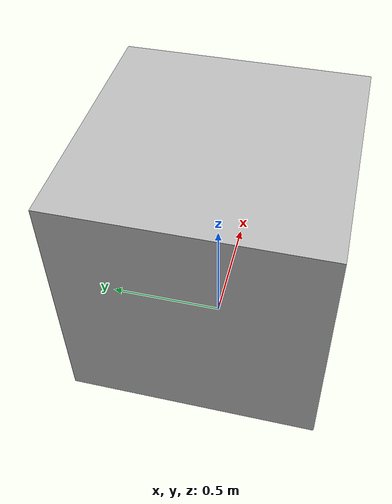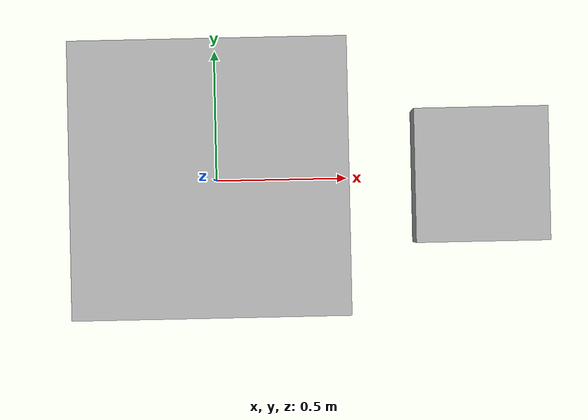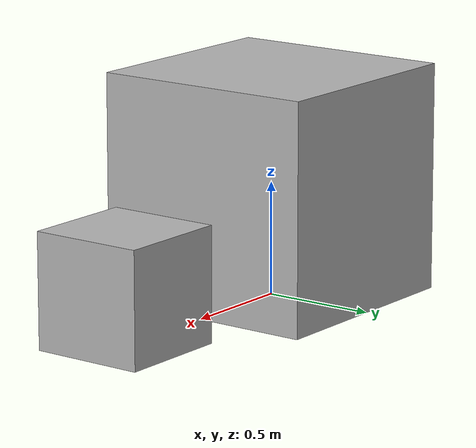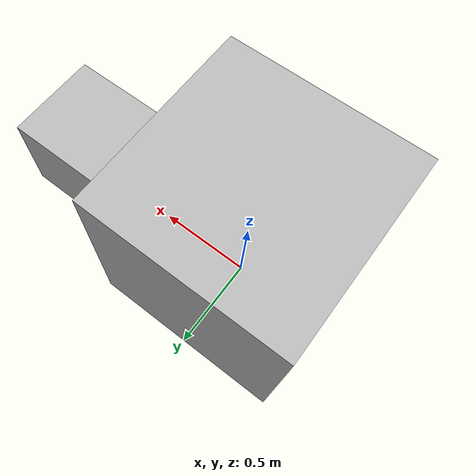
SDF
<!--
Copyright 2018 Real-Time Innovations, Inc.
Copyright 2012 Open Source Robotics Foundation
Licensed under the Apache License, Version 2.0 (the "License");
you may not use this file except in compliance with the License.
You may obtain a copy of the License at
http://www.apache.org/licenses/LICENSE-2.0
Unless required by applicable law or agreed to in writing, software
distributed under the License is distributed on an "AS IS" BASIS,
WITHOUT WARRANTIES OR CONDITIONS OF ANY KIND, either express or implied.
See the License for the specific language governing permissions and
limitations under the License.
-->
<!--
    Copied from: https://github.com/ros-simulation/gazebo_ros_pkgs/blob/kinetic-devel/gazebo_plugins/test/test_worlds/bumper_test.world
-->

<?xml version="1.0" ?>
<sdf version="1.3">
    <world name="default">
        <scene>
            <ambient>0.500000 0.500000 0.500000 0.500000</ambient>
            <background>0.700000 0.700000 0.700000 1.000000</background>
            <shadows>0</shadows>
        </scene>
        <physics type="ode">
            <gravity>0.0 -1.0 -10.0</gravity>
            <ode>
                <solver>
                    <type>quick</type>
                    <dt>0.001</dt>
                    <iters>50</iters>
                    <precon_iters>0</precon_iters>
                    <sor>1.3</sor>
                </solver>
                <constraints>
                    <cfm>0.0</cfm>
                    <erp>0.2</erp>
                    <contact_max_correcting_vel>100.0</contact_max_correcting_vel>
                    <contact_surface_layer>0.001</contact_surface_layer>
                </constraints>
            </ode>
        </physics>

        <model name="gplane">
            <pose>0.000000 0.000000 0.000000 0.000000 -0.000000 0.000000</pose>
            <link name="plane">
                <pose>0.000000 0.000000 0.000000 0.000000 -0.000000 0.000000</pose>
                <collision name="plane">
                    <pose>0.000000 0.000000 0.000000 0.000000 -0.000000 0.000000</pose>
                    <geometry>
                        <plane>
                            <normal>0.000000 0.000000 1.000000</normal>
                        </plane>
                    </geometry>
                    <surface>
                        <friction>
                            <ode>
                                <mu>50.000000</mu>
                                <mu2>50.000000</mu2>
                                <fdir1>0.000000 0.000000 0.000000</fdir1>
                                <slip1>0.000000</slip1>
                                <slip2>0.000000</slip2>
                            </ode>
                        </friction>
                        <bounce>
                            <restitution_coefficient>0.000000</restitution_coefficient>
                            <threshold>100000.000000</threshold>
                        </bounce>
                        <contact>
                            <ode>
                                <soft_cfm>0.000000</soft_cfm>
                                <soft_erp>0.200000</soft_erp>
                                <kp>1000000000.000000</kp>
                                <kd>1.000000</kd>
                                <max_vel>100.000000</max_vel>
                                <min_depth>0.001000</min_depth>
                            </ode>
                        </contact>
                    </surface>
                    <laser_retro>0.000000</laser_retro>
                </collision>
                <gravity>1</gravity>
                <self_collide>0</self_collide>
                <kinematic>0</kinematic>
            </link>
            <static>1</static>
        </model>
        <model name="simple_box">
            <pose>0.000000 0.000000 0.000000 0.000000 -0.000000 0.000000</pose>
            <link name="my_box">
                <pose>0.000000 0.000000 0.000000 0.000000 -0.000000 0.000000</pose>
                <inertial>
                    <pose>1.000000 0.000000 0.250000 0.000000 -0.000000 0.000000</pose>
                    <inertia>
                        <ixx>0.100000</ixx>
                        <ixy>0.000000</ixy>
                        <ixz>0.000000</ixz>
                        <iyy>0.100000</iyy>
                        <iyz>0.000000</iyz>
                        <izz>0.100000</izz>
                    </inertia>
                    <mass>1.000000</mass>
                </inertial>
                <collision name="my_box_geom">
                    <pose>1.000000 0.000000 0.250000 0.000000 -0.000000 0.000000</pose>
                    <geometry>
                        <box>
                            <size>0.500000 0.500000 0.500000</size>
                        </box>
                    </geometry>
                    <surface>
                        <friction>
                            <ode>
                                <mu>-1.000000</mu>
                                <mu2>-1.000000</mu2>
                                <fdir1>0.000000 0.000000 0.000000</fdir1>
                                <slip1>0.000000</slip1>
                                <slip2>0.000000</slip2>
                            </ode>
                        </friction>
                        <bounce>
                            <restitution_coefficient>0.000000</restitution_coefficient>
                            <threshold>100000.000000</threshold>
                        </bounce>
                        <contact>
                            <ode>
                                <soft_cfm>0.000000</soft_cfm>
                                <soft_erp>0.200000</soft_erp>
                                <kp>1000000000000.000000</kp>
                                <kd>1.000000</kd>
                                <max_vel>100.000000</max_vel>
                                <min_depth>0.001000</min_depth>
                            </ode>
                        </contact>
                    </surface>
                    <laser_retro>0.000000</laser_retro>
                </collision>
                <visual name="my_box_geom_visual">
                    <pose>1.000000 0.000000 0.250000 0.000000 -0.000000 0.000000</pose>
                    <geometry>
                        <box>
                            <size>0.500000 0.500000 0.500000</size>
                        </box>
                    </geometry>
                    <material>
                        <script>Gazebo/Blue</script>
                    </material>
                    <cast_shadows>1</cast_shadows>
                    <laser_retro>0.000000</laser_retro>
                    <transparency>0.000000</transparency>
                </visual>
                <sensor name="my_box" type="contact">
                    <always_on>true</always_on>
                    <update_rate>2</update_rate>
                    <visualize>true</visualize>
                    <pose>0.000000 0.000000 0.000000 0.000000 -0.000000 0.000000</pose>
                    <contact>
                        <collision>my_box_geom</collision>
                    </contact>
                    <plugin name="box_bumper_controller" filename="bumper_scan/libDdsBumperScanPlugin.so">
                        <topic_name>bumper_scan</topic_name>
                        <dds_domain_id>0</dds_domain_id>
                    </plugin>
                </sensor>
                <gravity>1</gravity>
                <self_collide>0</self_collide>
                <kinematic>0</kinematic>
            </link>
            <static>0</static>
        </model>
        <model name="reference_box">
            <pose>0.000000 0.000000 0.000000 1.570800 -0.000000 0.000000</pose>
            <link name="box1">
                <pose>0.000000 0.000000 0.000000 0.000000 -0.000000 0.000000</pose>
                <inertial>
                    <pose>0.000000 0.500000 0.000000 0.000000 -0.000000 0.000000</pose>
                    <inertia>
                        <ixx>10.000000</ixx>
                        <ixy>0.000000</ixy>
                        <ixz>0.000000</ixz>
                        <iyy>10.000000</iyy>
                        <iyz>0.000000</iyz>
                        <izz>10.000000</izz>
                    </inertia>
                    <mass>100.000000</mass>
                </inertial>
                <collision name="box1_geom">
                    <pose>0.000000 0.500000 0.000000 0.000000 -0.000000 0.000000</pose>
                    <geometry>
                        <box>
                            <size>1.000000 1.000000 1.000000</size>
                        </box>
                    </geometry>
                    <surface>
                        <friction>
                            <ode>
                                <mu>-1.000000</mu>
                                <mu2>-1.000000</mu2>
                                <fdir1>0.000000 0.000000 0.000000</fdir1>
                                <slip1>0.000000</slip1>
                                <slip2>0.000000</slip2>
                            </ode>
                        </friction>
                        <bounce>
                            <restitution_coefficient>0.000000</restitution_coefficient>
                            <threshold>100000.000000</threshold>
                        </bounce>
                        <contact>
                            <ode>
                                <soft_cfm>0.000000</soft_cfm>
                                <soft_erp>0.200000</soft_erp>
                                <kp>1000000000000.000000</kp>
                                <kd>1.000000</kd>
                                <max_vel>100.000000</max_vel>
                                <min_depth>0.001000</min_depth>
                            </ode>
                        </contact>
                    </surface>
                    <laser_retro>0.000000</laser_retro>
                </collision>
                <visual name="box1_geom_visual">
                    <pose>0.000000 0.500000 0.000000 0.000000 -0.000000 0.000000</pose>
                    <geometry>
                        <box>
                            <size>1.000000 1.000000 1.000000</size>
                        </box>
                    </geometry>
                    <material>
                        <script>Gazebo/Blue</script>
                    </material>
                    <cast_shadows>1</cast_shadows>
                    <laser_retro>0.000000</laser_retro>
                    <transparency>0.000000</transparency>
                </visual>
                <gravity>1</gravity>
                <self_collide>0</self_collide>
                <kinematic>0</kinematic>
            </link>
            <static>0</static>
        </model>
        <light name="point_white" type="point">
            <pose>0.000000 0.000000 8.000000 0.000000 -0.000000 0.000000</pose>
            <diffuse>1.000000 1.000000 1.000000 1.000000</diffuse>
            <specular>0.100000 0.100000 0.100000 1.000000</specular>
            <attenuation>
                <range>10.000000</range>
                <linear>0.100000</linear>
                <constant>0.200000</constant>
                <quadratic>0.000000</quadratic>
            </attenuation>
            <direction>0.000000 0.000000 -1.000000</direction>
            <cast_shadows>0</cast_shadows>
        </light>
    </world>
</sdf>
